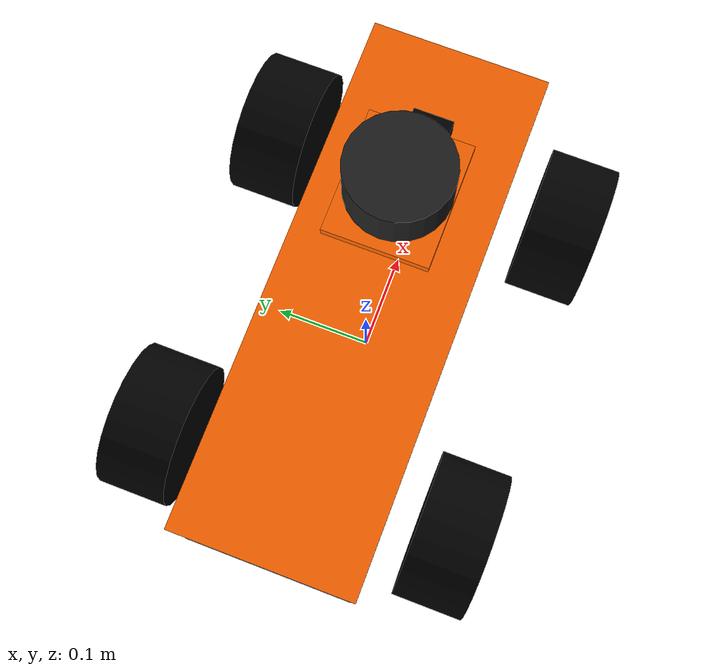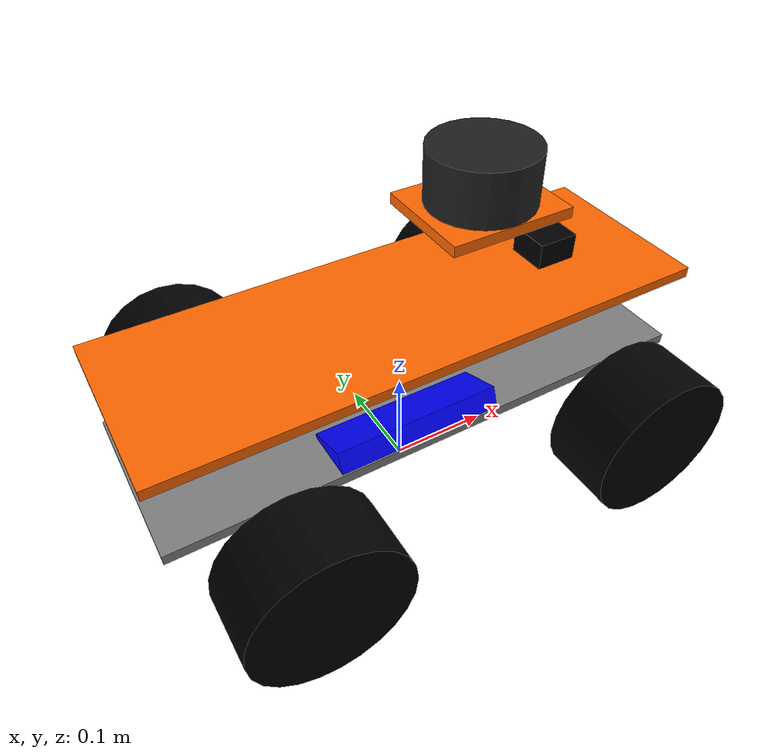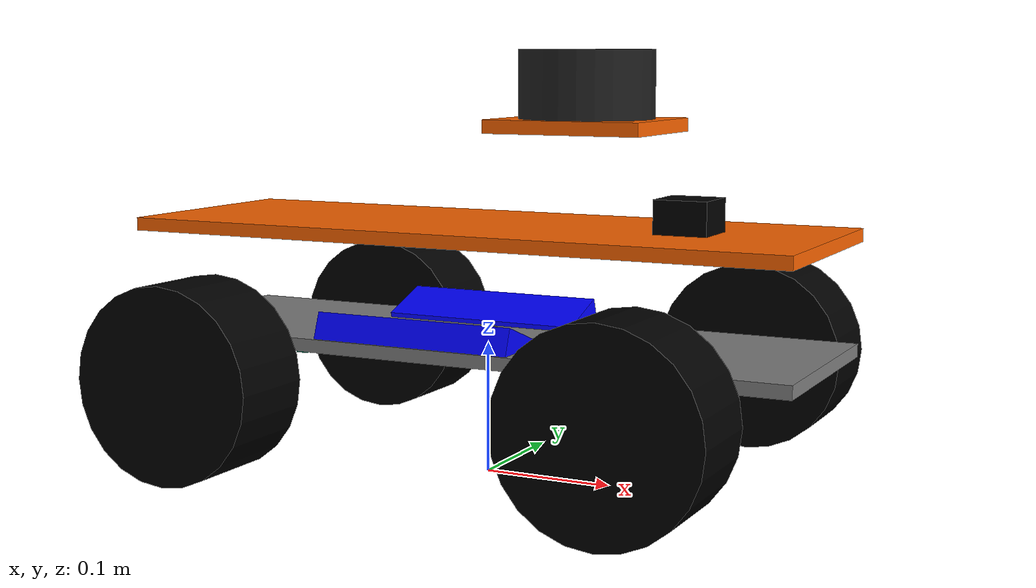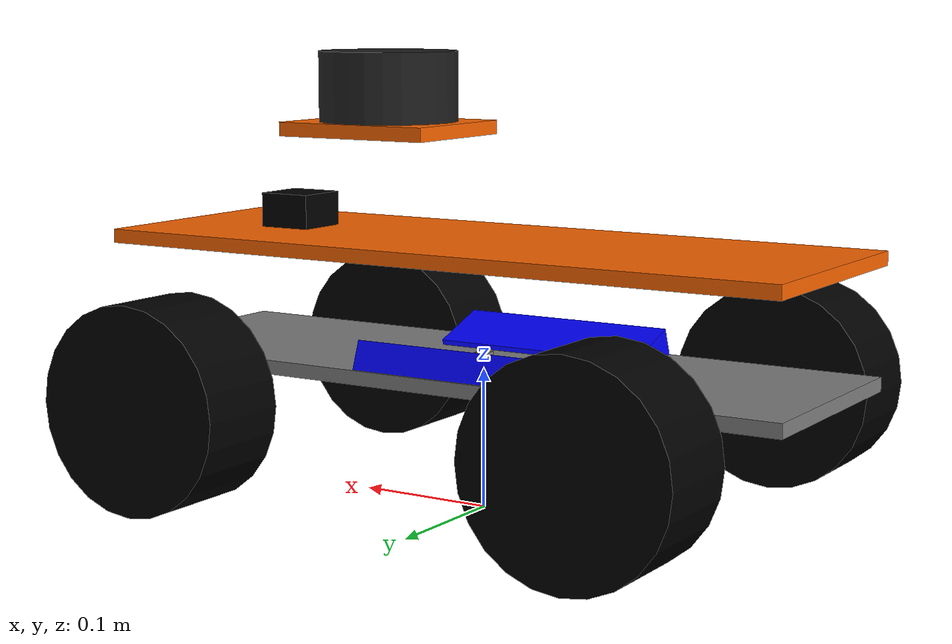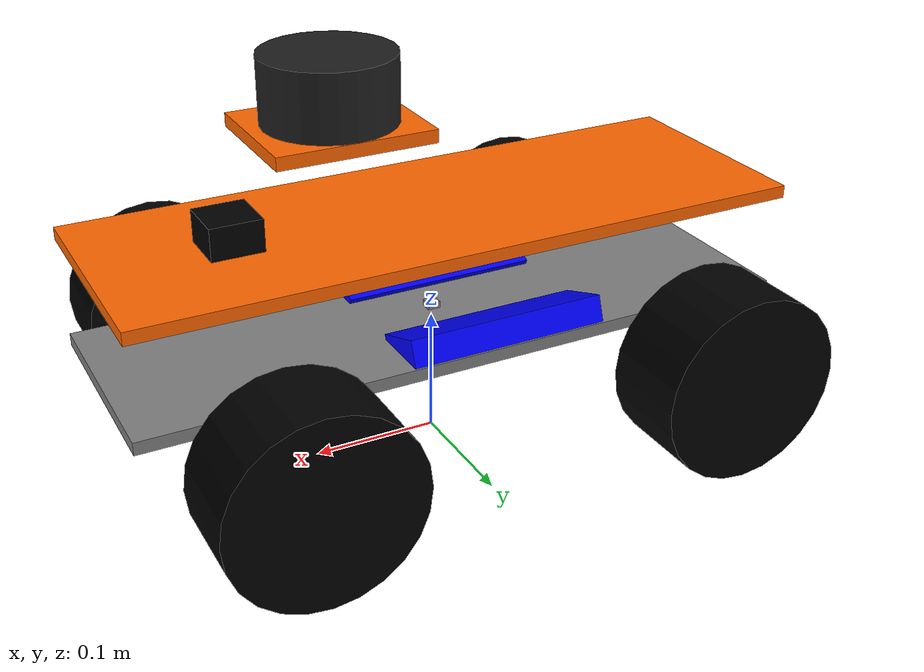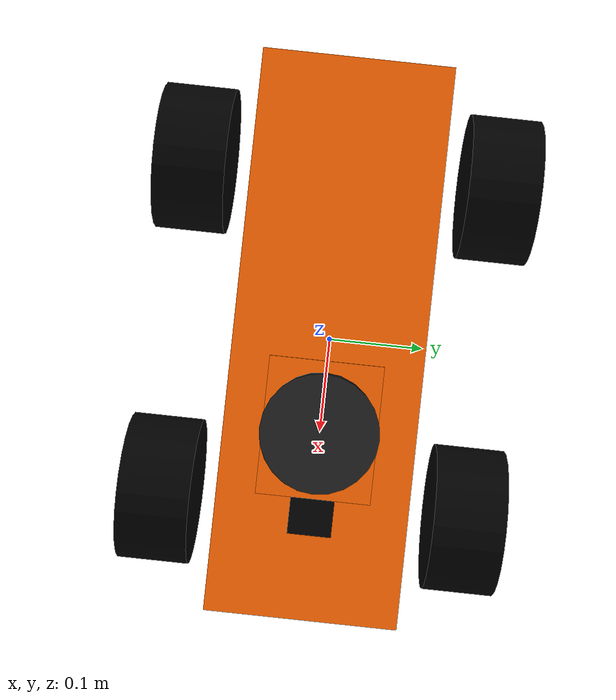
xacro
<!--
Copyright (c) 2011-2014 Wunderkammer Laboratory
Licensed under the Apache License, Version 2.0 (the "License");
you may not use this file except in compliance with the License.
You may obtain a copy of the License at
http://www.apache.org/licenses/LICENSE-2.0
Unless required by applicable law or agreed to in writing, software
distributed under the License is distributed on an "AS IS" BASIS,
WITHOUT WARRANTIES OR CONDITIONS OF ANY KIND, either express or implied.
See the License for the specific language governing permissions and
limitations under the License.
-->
<?xml version="1.0"?>

<robot name="racecar" xmlns:xacro="http://www.ros.org/wiki/xacro">
  <!-- include sensors -->
  <xacro:include filename="$(find single_racecar_navigation)/models/racecar/sensors/lidar.xacro" />
  <xacro:include filename="$(find single_racecar_navigation)/models/racecar/sensors/imu.xacro" />

  <!-- Degree-to-radian conversions -->
  <xacro:property name="degrees_45" value="0.785398163"/>
  <xacro:property name="degrees_90" value="1.57079633"/>

  <!-- chassis_length is measured along the x axis, chassis_width
       along the y axis, and chassis_height along the z axis. -->
  <xacro:property name="chassis_length" value="0.525"/>
  <xacro:property name="chassis_width" value="0.168"/>
  <xacro:property name="chassis_height" value="0.01"/>
  <xacro:property name="chassis_mass" value="2.788"/>

  <xacro:property name="battery_x_offset" value="0.055"/>
  <xacro:property name="battery_dist" value="0.065"/>
  <xacro:property name="battery_comp_depth" value="0.02"/>
  <xacro:property name="battery_comp_angle" value="0.34906585"/>
  <xacro:property name="battery_length" value="0.16"/>
  <xacro:property name="battery_width" value="0.047"/>
  <xacro:property name="battery_height" value="0.024"/>
  <xacro:property name="battery_mass" value="0.05025"/>

  <xacro:property name="hub_dia" value="0.09652"/>
  <xacro:property name="tire_dia" value="0.14605"/>
  <xacro:property name="tire_width" value="0.07"/>
  <xacro:property name="hex_hub_depth" value="0.01445"/>
  <xacro:property name="wheel_mass" value="0.29"/>

  <xacro:property name="wheelbase" value="0.335"/>
  <xacro:property name="hex_hub_dist" value="0.365"/>
  <xacro:property name="axle_length" value="0.03"/>
  <xacro:property name="wheel_travel" value="0.084"/>
  <xacro:property name="shock_z_offset" value="0.0655"/>

  <xacro:property name="shock_eff_limit" value="12.5106"/>
  <xacro:property name="shock_vel_limit" value="1000"/>

  <xacro:property name="axle_eff_limit" value="5.12766"/>
  <xacro:property name="axle_vel_limit" value="244.8696"/>

  <!-- These constants are used to simulate a Traxxas 2056 servo operated at
       6 V. servo_stall_torque is measured in N m. servo_no_load_speed is
       measured in rad/s. -->
  <xacro:property name="servo_stall_torque" value="0.5649"/>
  <xacro:property name="servo_no_load_speed" value="4.553"/>

  <xacro:property name="layer_mass"   value="0.0" />
  <xacro:property name="layer_x" value="0.525"/>
  <xacro:property name="layer_y" value="0.18"/>
  <xacro:property name="layer_z" value="0.01"/>
  <xacro:property name="layer_height" value="0.08"/>

  <material name="battery_mat">
    <color rgba="0 0 1 1"/>
  </material>
  <material name="chassis_mat">
    <color rgba="0.5 0.5 0.5 1"/>
  </material>
  <material name="tire_mat">
    <color rgba="0 0 0 1"/>
  </material>
  <material name="yellow">
    <color rgba="1 0.4 0 1"/>
  </material>

  <!-- Null inertial element. This is needed to make the model work with
       Gazebo. -->
  <xacro:macro name="null_inertial">
    <inertial>
      <mass value="0.001"/>
      <inertia ixx="0.001" ixy="0" ixz="0" iyy="0.001" iyz="0" izz="0.001"/>
    </inertial>
  </xacro:macro>

  <!-- Inertia of a solid cuboid. Width is measured along the x axis, depth
       along the y axis, and height along the z axis. -->
  <xacro:macro name="solid_cuboid_inertial"
               params="width depth height mass *origin">
    <inertial>
      <xacro:insert_block name="origin"/>
      <mass value="${mass}"/>
      <inertia ixx="${mass * (depth * depth + height * height) / 12}"
               ixy="0" ixz="0"
               iyy="${mass * (width * width + height * height) / 12}"
               iyz="0"
               izz="${mass * (width * width + depth * depth) / 12}"/>
    </inertial>
  </xacro:macro>

  <xacro:macro name="thick_walled_tube_inertial"
               params="inner_rad outer_rad height mass">
    <inertial>
      <mass value="${mass}"/>
      <inertia ixx="${(1 / 12) * mass * (3 * (inner_rad * inner_rad +
                    outer_rad * outer_rad) + height * height)}"
               ixy="0" ixz="0"
               iyy="${(1 / 12) * mass * (3 * (inner_rad * inner_rad +
                    outer_rad * outer_rad) + height * height)}"
               iyz="0"
               izz="${mass * (inner_rad * inner_rad +
                    outer_rad * outer_rad) / 2}"/>
    </inertial>
  </xacro:macro>

  <!-- Battery -->
  <xacro:macro name="battery" params="prefix reflect">
    <joint name="chassis_to_${prefix}_battery" type="fixed">
      <parent link="chassis"/>
      <child link="${prefix}_battery_offset"/>
      <origin xyz="${battery_x_offset - battery_length / 2}
                   ${reflect * battery_dist / 2}
                   0"
              rpy="${reflect * battery_comp_angle} 0 0"/>
    </joint>

    <link name="${prefix}_battery_offset">
      <xacro:null_inertial/>
    </link>

    <joint name="offset_to_${prefix}_battery" type="fixed">
      <parent link="${prefix}_battery_offset"/>
      <child link="${prefix}_battery"/>
      <origin xyz="0
                   ${reflect * battery_width / 2}
                   ${(battery_height / 2) - battery_comp_depth}"/>
    </joint>

    <link name="${prefix}_battery">
      <visual>
        <geometry>
          <box size="${battery_length} ${battery_width} ${battery_height}"/>
        </geometry>
        <material name="battery_mat"/>
      </visual>

      <collision>
        <geometry>
          <box size="${battery_length} ${battery_width} ${battery_height}"/>
        </geometry>
      </collision>

      <xacro:solid_cuboid_inertial
         width="${battery_length}" depth="${battery_width}"
         height="${battery_height}" mass="${battery_mass}">
        <origin/>
      </xacro:solid_cuboid_inertial>
    </link>

    <gazebo reference="${prefix}_battery">
      <material>Gazebo/Blue</material>
    </gazebo>
  </xacro:macro>

  <!-- Shock absorber -->
  <xacro:macro name="shock"
               params="lr_prefix fr_prefix lr_reflect fr_reflect child">
    <joint name="${lr_prefix}_${fr_prefix}_shock" type="prismatic">
      <parent link="chassis"/>
      <child link="${child}"/>

      <origin xyz="${fr_reflect * wheelbase / 2}
                   ${lr_reflect * ((hex_hub_dist / 2) - axle_length)}
                   ${(wheel_travel / 2) - shock_z_offset}"/>
      <axis xyz="0 0 -1"/>
      <limit lower="${-wheel_travel / 2}" upper="${wheel_travel / 2}"
             effort="${shock_eff_limit}" velocity="${shock_vel_limit}"/>
    </joint>
    <transmission name="${lr_prefix}_${fr_prefix}_shock_trans">
      <type>transmission_interface/SimpleTransmission</type>
      <joint name="${lr_prefix}_${fr_prefix}_shock">
        <hardwareInterface>hardware_interface/EffortJointInterface</hardwareInterface>
      </joint>
      <actuator name="${lr_prefix}_${fr_prefix}_shock_act">
        <!-- This hardwareInterface element exists for compatibility
             with ROS Hydro. -->
        <hardwareInterface>hardware_interface/EffortJointInterface</hardwareInterface>
        <mechanicalReduction>1</mechanicalReduction>
      </actuator>
    </transmission>
  </xacro:macro>

  <!-- The "wheel" macro defines an axle carrier, axle, and wheel. -->
  <xacro:macro name="wheel" params="lr_prefix fr_prefix lr_reflect">
    <link name="${lr_prefix}_${fr_prefix}_axle_carrier">
      <xacro:null_inertial/>
    </link>

    <!-- The left and right axles have the same axis so that identical
         rotation values cause the wheels to rotate in the same direction. -->
    <joint name="${lr_prefix}_${fr_prefix}_axle" type="continuous">
      <parent link="${lr_prefix}_${fr_prefix}_axle_carrier"/>
      <child link="${lr_prefix}_${fr_prefix}_wheel"/>
      <origin rpy="${degrees_90} 0 0"/>
      <axis xyz="0 0 -1"/>
      <limit effort="${axle_eff_limit}" velocity="${axle_vel_limit}"/>
    </joint>
    <transmission name="${lr_prefix}_${fr_prefix}_axle_trans">
      <type>transmission_interface/SimpleTransmission</type>
      <joint name="${lr_prefix}_${fr_prefix}_axle">
        <hardwareInterface>hardware_interface/EffortJointInterface</hardwareInterface>
      </joint>
      <actuator name="${lr_prefix}_${fr_prefix}_axle_act">
        <!-- This hardwareInterface element exists for compatibility
             with ROS Hydro. -->
        <hardwareInterface>hardware_interface/EffortJointInterface</hardwareInterface>
        <mechanicalReduction>1</mechanicalReduction>
      </actuator>
    </transmission>

    <link name="${lr_prefix}_${fr_prefix}_wheel">
      <visual>
        <origin xyz="0
                     0
                     0"/>
        <geometry>
          <cylinder radius="${tire_dia / 2}" length="${tire_width}"/>
        </geometry>
        <material name="tire_mat"/>
      </visual>

      <collision>
        <origin xyz="0
                     0
                     0"/>
        <geometry>
          <cylinder radius="${tire_dia / 2}" length="${tire_width}"/>
        </geometry>
        <surface>
          <friction>
            <ode>
            <mu>100.0</mu>
            <mu2>100.0</mu2>
            </ode>
          </friction>
        </surface>
      </collision>
      <xacro:thick_walled_tube_inertial
          inner_rad="${hub_dia / 2}" outer_rad="${tire_dia / 2}"
          height="${tire_width}" mass="${wheel_mass}"/>
    </link>

    <gazebo reference="${lr_prefix}_${fr_prefix}_wheel">
      <material>Gazebo/Black</material>
    </gazebo>
  </xacro:macro>

  <!-- Front wheel -->
  <xacro:macro name="front_wheel"
               params="lr_prefix fr_prefix lr_reflect fr_reflect">
    <xacro:shock lr_prefix="${lr_prefix}" fr_prefix="${fr_prefix}"
                 lr_reflect="${lr_reflect}" fr_reflect="${fr_reflect}"
                 child="${lr_prefix}_steering_link"/>

    <link name="${lr_prefix}_steering_link">
      <xacro:null_inertial/>
    </link>

    <joint name="${lr_prefix}_steering_joint" type="revolute">
      <parent link="${lr_prefix}_steering_link"/>
      <child link="${lr_prefix}_${fr_prefix}_axle_carrier"/>
      <axis xyz="0 0 1"/>
      <limit lower="${-degrees_45}" upper="${degrees_45}"
             effort="${servo_stall_torque}" velocity="${servo_no_load_speed}"/>
    </joint>
    <transmission name="${lr_prefix}_steering_trans">
      <type>transmission_interface/SimpleTransmission</type>
      <joint name="${lr_prefix}_steering_joint">
        <hardwareInterface>hardware_interface/EffortJointInterface</hardwareInterface>
      </joint>
      <actuator name="${lr_prefix}_steering_act">
        <!-- This hardwareInterface element exists for compatibility
             with ROS Hydro. -->
        <hardwareInterface>hardware_interface/EffortJointInterface</hardwareInterface>
        <mechanicalReduction>1</mechanicalReduction>
      </actuator>
    </transmission>

    <xacro:wheel lr_prefix="${lr_prefix}" fr_prefix="${fr_prefix}"
                 lr_reflect="${lr_reflect}"/>
  </xacro:macro>

  <!-- Rear wheel -->
  <xacro:macro name="rear_wheel"
               params="lr_prefix fr_prefix lr_reflect fr_reflect">
    <xacro:shock lr_prefix="${lr_prefix}" fr_prefix="${fr_prefix}"
                 lr_reflect="${lr_reflect}" fr_reflect="${fr_reflect}"
                 child="${lr_prefix}_${fr_prefix}_axle_carrier"/>
    <xacro:wheel lr_prefix="${lr_prefix}" fr_prefix="${fr_prefix}"
                 lr_reflect="${lr_reflect}"/>
  </xacro:macro>

  <!-- chassis for sensors -->
  <xacro:macro name="layer" params="layer parent m x y z *joint_pose">
    <joint name="${layer}_joint" type="fixed">
      <xacro:insert_block name="joint_pose"/>
      <parent link="${parent}"/>
      <child link="${layer}_link" />
    </joint>

    <link name="${layer}_link">
      <visual>
        <origin xyz="0 0 0" rpy="0 0 0" />
        <geometry>
          <box size="${x} ${y} ${z}" />
        </geometry>
        <material name="yellow" />
      </visual>
      <collision>
        <origin xyz="0 0 0" rpy="0 0 0" />
        <geometry>
          <box size="${x} ${y} ${z}" />
        </geometry>
      </collision>
      <xacro:solid_cuboid_inertial
              width="${x}" depth="${y}"
              height="${z}" mass="${m}">
        <origin xyz="0 0 ${-z / 2}"/>
      </xacro:solid_cuboid_inertial>
    </link>

    <gazebo reference="${layer}_link">
      <material>Gazebo/Orange</material>
    </gazebo>
  </xacro:macro>

  <link name="base_footprint"/>
  <!-- base_link must have geometry so that its axes can be displayed in
       rviz. -->
  <link name="base_link">
    <visual>
      <geometry>
        <box size="0.01 0.01 0.01"/>
      </geometry>
      <material name="chassis_mat"/>
    </visual>
  </link>
  <gazebo reference="base_link">
    <material>Gazebo/Grey</material>
  </gazebo>

  <!-- rear axis center -->
  <link name="rear_axis_center">
    <visual>
      <origin xyz="0 0 0" rpy="0 0 0"/>
      <geometry>
        <box size="0.01 0.01 0.01"/>
      </geometry>
    </visual>
  </link>

  <joint name="base_link_joint" type="fixed">
    <origin xyz="${-wheelbase / 2}
                 0
                 ${(wheel_travel / 2) - shock_z_offset}" rpy="0 0 0"/>
    <parent link="base_link"/>
    <child link="rear_axis_center"/>
  </joint>

  <joint name="base_footprint_to_base_link" type="fixed">
    <parent link="base_footprint"/>
    <child link="base_link"/>
    <origin xyz="0 0 ${(wheel_travel/2)+shock_z_offset}" />
  </joint>

  <!-- Chassis -->
  <link name="chassis">
    <visual>
      <origin xyz="0 0 ${-chassis_height / 2}"/>
      <geometry>
        <box size="${chassis_length} ${chassis_width} ${chassis_height}"/>
      </geometry>
      <material name="chassis_mat"/>
    </visual>

    <collision>
      <origin xyz="0 0 ${-chassis_height / 2}"/>
      <geometry>
        <box size="${chassis_length} ${chassis_width} ${chassis_height}"/>
      </geometry>
    </collision>

    <xacro:solid_cuboid_inertial
        width="${chassis_length}" depth="${chassis_width}"
        height="${chassis_height}" mass="${chassis_mass}">
      <origin xyz="0 0 ${-chassis_height / 2}"/>
    </xacro:solid_cuboid_inertial>
  </link>
  <gazebo reference="chassis">
    <material>Gazebo/Grey</material>
  </gazebo>

  <joint name="base_link_to_chassis" type="fixed">
    <parent link="base_link"/>
    <child link="chassis"/>
  </joint>

  <!-- Batteries -->
  <xacro:battery prefix="left" reflect="1"/>
  <xacro:battery prefix="right" reflect="-1"/>

  <!-- Wheels -->
  <xacro:front_wheel lr_prefix="left" fr_prefix="front"
                     lr_reflect="1" fr_reflect="1"/>
  <xacro:front_wheel lr_prefix="right" fr_prefix="front"
                     lr_reflect="-1" fr_reflect="1"/>
  <xacro:rear_wheel lr_prefix="left" fr_prefix="rear"
                    lr_reflect="1" fr_reflect="-1"/>
  <xacro:rear_wheel lr_prefix="right" fr_prefix="rear"
                    lr_reflect="-1" fr_reflect="-1"/>
  <gazebo reference="base_link">
    <visual>
      <plugin name="draw_trajectory_plugin" filename="libDrawTrajectoryPlugin.so">
        <id>1</id>
        <position>0 0 0</position>
        <material>Gazebo/Red</material>
      </plugin>
    </visual>
  </gazebo>
  <gazebo reference="left_rear_wheel">
    <visual>
      <plugin name="draw_trajectory_plugin" filename="libDrawTrajectoryPlugin.so">
        <id>2</id>
        <position>0 0 0</position>
        <material>Gazebo/Blue</material>
      </plugin>
    </visual>
  </gazebo>
  <gazebo reference="right_rear_wheel">
    <visual>
      <plugin name="draw_trajectory_plugin" filename="libDrawTrajectoryPlugin.so">
        <id>3</id>
        <position>0 0 0</position>
        <material>Gazebo/Blue</material>
      </plugin>
    </visual>
  </gazebo>
  <gazebo>
    <plugin name="gazebo_ros_control" filename="libgazebo_ros_control.so">
    <legacyModeNS>true</legacyModeNS>
    <robotSimType>gazebo_ros_control/DefaultRobotHWSim</robotSimType>
    </plugin>
  </gazebo>

  <!-- layers -->
  <xacro:layer layer="platform" parent="chassis" m="${layer_mass}" x="${layer_x}" y="${layer_y}" z="${layer_z}">
    <origin xyz="0 0 ${layer_height}" rpy="0 0 0" />
  </xacro:layer>

  <xacro:layer layer="lidar_platform" parent="platform_link" m="${layer_mass}" x="0.12" y="0.10" z="0.01">
    <origin xyz="0.08 0 ${layer_height}" rpy="0 0 0" />
  </xacro:layer>

  <joint name="lidar_joint" type="fixed">
    <origin xyz="0 0 0.03" rpy="0 0 0" />
    <parent link="lidar_platform_link"/>
    <child link="base_scan"/>
  </joint>

  <lidar prefix="laser"/>

  <joint name="imu_joint" type="fixed">
    <origin xyz="0.16 0 0.015" rpy="0 0 0" />
    <parent link="platform_link"/>
    <child link="imu_link"/>
  </joint>

  <imu prefix="imu"/>

</robot>

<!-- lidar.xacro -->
<robot xmlns:xacro="http://www.ros.org/wiki/xacro" name="lidar">

    <xacro:macro name="lidar" params="prefix:=laser">
        <!-- Create laser reference frame -->
        <link name="base_scan">
            <inertial>
                <mass value="0.001" />
                <origin xyz="0 0 0" />
                <inertia ixx="0.001" ixy="0.0" ixz="0.0"
                         iyy="0.001" iyz="0.0"
                         izz="0.001" />
            </inertial>

            <visual>
                <origin xyz=" 0 0 0 " rpy="0 0 0" />
                <geometry>
                    <cylinder length="0.05" radius="0.05"/>
                </geometry>
                <material name="black"/>
            </visual>

            <collision>
                <origin xyz="0.0 0.0 0.0" rpy="0 0 0" />
                <geometry>
                    <cylinder length="0.06" radius="0.05"/>
                </geometry>
            </collision>
        </link>
        <gazebo reference="base_scan">
            <material>Gazebo/Black</material>
        </gazebo>

        <gazebo reference="base_scan">
            <sensor type="ray" name="ls01g">
                <pose>0 0 0 0 0 0</pose>
                <visualize>false</visualize>
                <update_rate>10.0</update_rate>
                <ray>
                    <scan>
                        <horizontal>
                            <samples>360</samples>
                            <resolution>1</resolution>
                            <min_angle>-3.1415926</min_angle>
                            <max_angle>3.1415926</max_angle>
                        </horizontal>
                    </scan>
                    <range>
                        <min>0.10</min>
                        <max>8.0</max>
                        <resolution>0.01</resolution>
                    </range>
                    <noise>
                        <type>gaussian</type>
                        <mean>0.0</mean>
                        <stddev>0.01</stddev>
                    </noise>
                </ray>
                <plugin name="gazebo_ls01g" filename="libgazebo_ros_laser.so">
                    <topicName>scan</topicName>
                    <frameName>base_scan</frameName>
                </plugin>
            </sensor>
        </gazebo>

    </xacro:macro>

</robot>

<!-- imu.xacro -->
<robot xmlns:xacro="http://www.ros.org/wiki/xacro" name="imu">

    <xacro:macro name="imu" params="prefix:=imu">
        <!-- Create laser reference frame -->
        <link name="${prefix}_link">
            <inertial>
                <mass value="0.001" />
                <origin xyz="0 0 0" />
                <inertia ixx="0.001" ixy="0.0" ixz="0.0"
                         iyy="0.001" iyz="0.0"
                         izz="0.001" />
            </inertial>

            <visual>
                <origin xyz=" 0 0 0 " rpy="0 0 0" />
                <geometry>
                    <box size="0.04 0.04 0.03" />
                </geometry>
                <material name="tire_mat"/>
            </visual>

            <collision>
                <origin xyz="0.0 0.0 0.0" rpy="0 0 0" />
                <geometry>
                    <box size="0.04 0.04 0.03" />
                </geometry>
            </collision>
        </link>
        <gazebo reference="${prefix}_link">
            <material>Gazebo/Black</material>
        </gazebo>

        <gazebo reference="${prefix}_link">
            <gravity>true</gravity>
            <sensor name="imu_sensor" type="imu">
                <always_on>true</always_on>
                <update_rate>100</update_rate>
                <visualize>true</visualize>
                <topic>imu</topic>
                <plugin filename="libgazebo_ros_imu_sensor.so" name="imu_plugin">
                    <topicName>imu</topicName>
                    <bodyName>imu_link</bodyName>
                    <updateRateHZ>100.0</updateRateHZ>
                    <gaussianNoise>0.0</gaussianNoise>
                    <xyzOffset>0 0 0</xyzOffset>
                    <rpyOffset>0 0 0</rpyOffset>
                    <frameName>imu_link</frameName>
                </plugin>
                <pose>0 0 0 0 0 0</pose>
            </sensor>
        </gazebo>

    </xacro:macro>

</robot>
